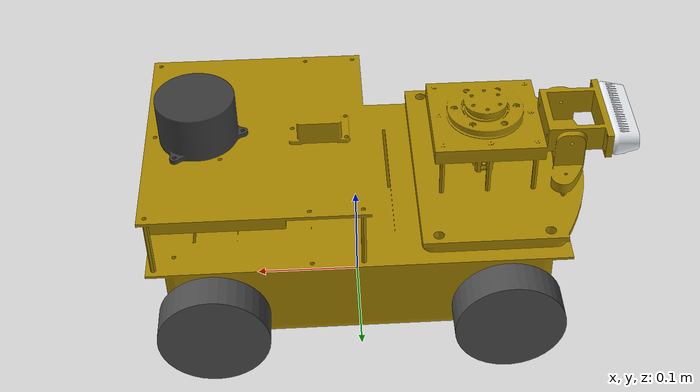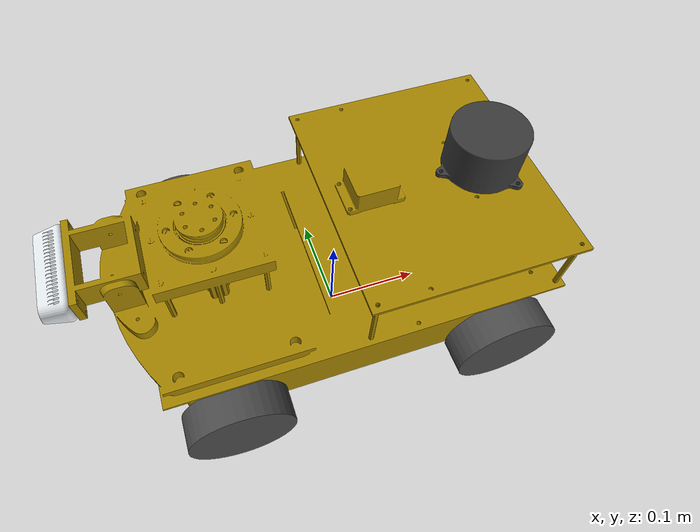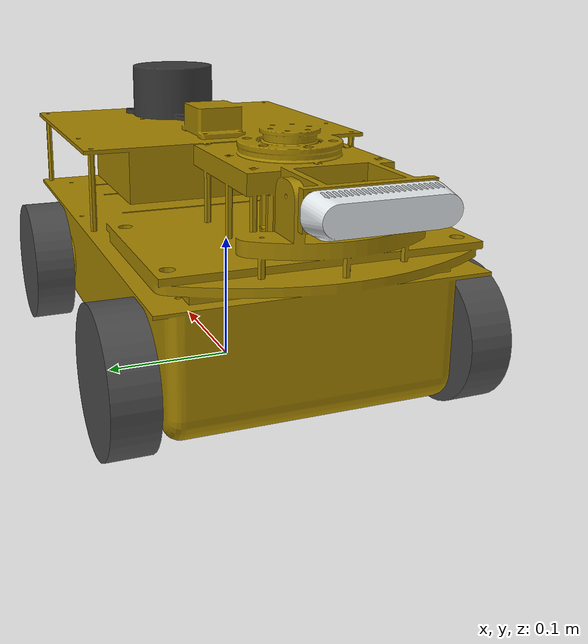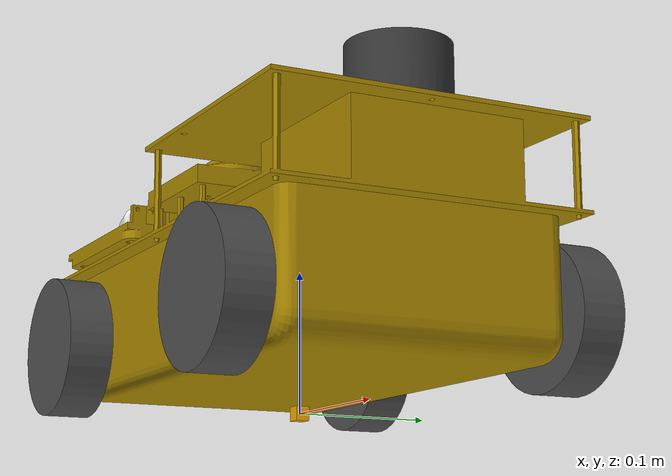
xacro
<!-- 根标签，必须声明 xmlns:xacro -->
<robot name="ttza_descripation" xmlns:xacro="http://www.ros.org/wiki/xacro">
<!--包含机器人的xacro文件-->
	<xacro:include filename="agvcar.urdf" />
<!--运动控制-->
	<xacro:include filename="gazebo/move.xacro" />
<!--雷达配置文件-->
	<xacro:include filename="gazebo/laser.xacro" />
<!--深度相机配置文件-->
	<xacro:include filename="gazebo/kinect.xacro" />
<!--相机配置文件-->
	<xacro:include filename="gazebo/camera.xacro" />
<!-- rqt_plot显示gazebo——pose -->
<gazebo>
    <plugin name="ground_truth_odometry" filename="libgazebo_ros_p3d.so">
      <alwaysOn>true</alwaysOn>
      <updateRate>100.0</updateRate>
      <bodyName>base_link</bodyName>
      <topicName>base_pose_ground_truth</topicName>
      <gaussianNoise>0.01</gaussianNoise>
      <frameName>world</frameName>
      <!-- initialize odometry for fake localization-->
      <xyzOffsets>0 0 0</xyzOffsets>
      <rpyOffsets>0 0 0</rpyOffsets>
    </plugin>
</gazebo>
</robot>

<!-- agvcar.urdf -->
<robot
  name="agvcar">
  <link
    name="front_base">
    <visual>
      <origin
        xyz="0 0 0"
        rpy="0 0 0" />
      <geometry>
        <box size="0.01 0.01 0.01"/>
      </geometry>
    </visual>
  </link>
  <link
    name="base_link">
    <inertial>
      <origin
        xyz="0.0535596635670063 -7.75930973195837E-06 0.0864450067600846"
        rpy="0 0 0" />
      <mass
        value="13.4285294805367" />
      <inertia
        ixx="0.0493474568714098"
        ixy="-6.5377130573348E-11"
        ixz="1.55124810899379E-06"
        iyy="0.0974844673307596"
        iyz="-1.85077943424468E-09"
        izz="0.133169285413625" />
    </inertial>
    <visual>
      <origin
        xyz="0 0 0"
        rpy="0 0 0" />
      <geometry>
        <mesh
          filename="package://agvcar/meshes/base_link.STL" />
      </geometry>
      <material
        name="">
        <color
          rgba="0.647058823529412 0.517647058823529 0 1" />
      </material>
    </visual>
    <collision>
      <origin
        xyz="0 0 0"
        rpy="0 0 0" />
      <geometry>
        <mesh
          filename="package://agvcar/meshes/base_link.STL" />
      </geometry>
    </collision>
  </link>
  <joint
    name="frontbase"
    type="fixed">
    <origin
      xyz="0 0 0.02"
      rpy="0 0 0" />
    <parent
      link="front_base" />
    <child
      link="base_link" />
  </joint>
  <link
    name="zql">
    <inertial>
      <origin
        xyz="0 0.00655993549543088 -2.08166817117217E-17"
        rpy="0 0 0" />
      <mass
        value="0.24686785868356" />
      <inertia
        ixx="0.000186555687353195"
        ixy="5.54971750626698E-19"
        ixz="1.1336124277419E-20"
        iyy="0.000332239900624819"
        iyz="-2.1205858328098E-19"
        izz="0.000186555687353195" />
    </inertial>
    <visual>
      <origin
        xyz="0 0 0"
        rpy="0 0 0" />
      <geometry>
        <mesh
          filename="package://agvcar/meshes/zql.STL" />
      </geometry>
      <material
        name="">
        <color
          rgba="0.298039215686275 0.298039215686275 0.298039215686275 1" />
      </material>
    </visual>
    <collision>
      <origin
        xyz="0 0 0"
        rpy="0 0 0" />
      <geometry>
        <mesh
          filename="package://agvcar/meshes/zql.STL" />
      </geometry>
    </collision>
  </link>
  <joint
    name="zq"
    type="continuous">
    <origin
      xyz="0.134 0.11846 0.0358000000000002"
      rpy="0 0 0" />
    <parent
      link="base_link" />
    <child
      link="zql" />
    <axis
      xyz="0 1 0" />
  </joint>
  <link
    name="yql">
    <inertial>
      <origin
        xyz="1.11022302462516E-16 -0.00655993549543132 0"
        rpy="0 0 0" />
      <mass
        value="0.24686785868356" />
      <inertia
        ixx="0.000186555687353195"
        ixy="5.21507883374648E-19"
        ixz="6.6845016754145E-21"
        iyy="0.000332239900624819"
        iyz="-2.06921789956204E-19"
        izz="0.000186555687353195" />
    </inertial>
    <visual>
      <origin
        xyz="0 0 0"
        rpy="0 0 0" />
      <geometry>
        <mesh
          filename="package://agvcar/meshes/yql.STL" />
      </geometry>
      <material
        name="">
        <color
          rgba="0.298039215686275 0.298039215686275 0.298039215686275 1" />
      </material>
    </visual>
    <collision>
      <origin
        xyz="0 0 0"
        rpy="0 0 0" />
      <geometry>
        <mesh
          filename="package://agvcar/meshes/yql.STL" />
      </geometry>
    </collision>
  </link>
  <joint
    name="yq"
    type="continuous">
    <origin
      xyz="0.133999999999999 -0.11846 0.0358000000000006"
      rpy="0 0 0" />
    <parent
      link="base_link" />
    <child
      link="yql" />
    <axis
      xyz="0 -1 0" />
  </joint>
  <link
    name="zhl">
    <inertial>
      <origin
        xyz="-6.93889390390723E-17 0.00655993549543088 -6.93889390390723E-18"
        rpy="0 0 0" />
      <mass
        value="0.24686785868356" />
      <inertia
        ixx="0.000186555687353195"
        ixy="5.09181411447997E-19"
        ixz="-1.25607927469927E-20"
        iyy="0.000332239900624819"
        iyz="-2.08843859917431E-19"
        izz="0.000186555687353195" />
    </inertial>
    <visual>
      <origin
        xyz="0 0 0"
        rpy="0 0 0" />
      <geometry>
        <mesh
          filename="package://agvcar/meshes/zhl.STL" />
      </geometry>
      <material
        name="">
        <color
          rgba="0.298039215686275 0.298039215686275 0.298039215686275 1" />
      </material>
    </visual>
    <collision>
      <origin
        xyz="0 0 0"
        rpy="0 0 0" />
      <geometry>
        <mesh
          filename="package://agvcar/meshes/zhl.STL" />
      </geometry>
    </collision>
  </link>
  <joint
    name="zh"
    type="continuous">
    <origin
      xyz="-0.134 0.118460000000001 0.0357999999999995"
      rpy="0 0 0" />
    <parent
      link="base_link" />
    <child
      link="zhl" />
    <axis
      xyz="0 1 0" />
  </joint>
  <link
    name="yhl">
    <inertial>
      <origin
        xyz="6.93889390390723E-17 -0.00655993549543088 1.38777878078145E-17"
        rpy="0 0 0" />
      <mass
        value="0.24686785868356" />
      <inertia
        ixx="0.000186555687353195"
        ixy="5.22839018577619E-19"
        ixz="2.81461989764704E-20"
        iyy="0.000332239900624819"
        iyz="-2.0295506492961E-19"
        izz="0.000186555687353195" />
    </inertial>
    <visual>
      <origin
        xyz="0 0 0"
        rpy="0 0 0" />
      <geometry>
        <mesh
          filename="package://agvcar/meshes/yhl.STL" />
      </geometry>
      <material
        name="">
        <color
          rgba="0.298039215686275 0.298039215686275 0.298039215686275 1" />
      </material>
    </visual>
    <collision>
      <origin
        xyz="0 0 0"
        rpy="0 0 0" />
      <geometry>
        <mesh
          filename="package://agvcar/meshes/yhl.STL" />
      </geometry>
    </collision>
  </link>
  <joint
    name="yh"
    type="continuous">
    <origin
      xyz="-0.134000000000001 -0.118459999999999 0.0357999999999998"
      rpy="0 0 0" />
    <parent
      link="base_link" />
    <child
      link="yhl" />
    <axis
      xyz="0 -1 0" />
  </joint>
  <link
    name="ladar">
    <inertial>
      <origin
        xyz="1.00438546368764E-11 -5.09414732619007E-12 0.0222462705397482"
        rpy="0 0 0" />
      <mass
        value="0.180802376452422" />
      <inertia
        ixx="8.86105371612917E-05"
        ixy="1.49899275371219E-14"
        ixz="3.75499657275673E-14"
        iyy="8.86105368846044E-05"
        iyz="-1.35257771200435E-14"
        izz="0.000116614517328158" />
    </inertial>
    <visual>
      <origin
        xyz="0 0 0"
        rpy="0 0 0" />
      <geometry>
        <mesh
          filename="package://agvcar/meshes/ladar.STL" />
      </geometry>
      <material
        name="">
        <color
          rgba="0.223529411764706 0.223529411764706 0.223529411764706 1" />
      </material>
    </visual>
    <collision>
      <origin
        xyz="0 0 0"
        rpy="0 0 0" />
      <geometry>
        <mesh
          filename="package://agvcar/meshes/ladar.STL" />
      </geometry>
    </collision>
  </link>
  <joint
    name="ladar_body"
    type="fixed">
    <origin
      xyz="0.141469568517405 0 0.160500000000001"
      rpy="0 0 0" />
    <parent
      link="base_link" />
    <child
      link="ladar" />
    <axis
      xyz="0 0 0" />
  </joint>
  <link
    name="camera">
    <inertial>
      <origin
        xyz="0.0114440208259819 0.0017049811987826 -0.000136108231652915"
        rpy="0 0 0" />
      <mass
        value="0.107910427285576" />
      <inertia
        ixx="7.12550269124956E-05"
        ixy="-1.78474723509806E-08"
        ixz="-4.9297800794627E-08"
        iyy="7.71002128129154E-06"
        iyz="-2.48245266673343E-10"
        izz="7.02567377723332E-05" />
    </inertial>
    <visual>
      <origin
        xyz="0 0 0"
        rpy="0 0 0" />
      <geometry>
        <mesh
          filename="package://agvcar/meshes/camera.STL" />
      </geometry>
      <material
        name="">
        <color
          rgba="0.898039215686275 0.917647058823529 0.929411764705882 1" />
      </material>
    </visual>
    <collision>
      <origin
        xyz="0 0 0"
        rpy="0 0 0" />
      <geometry>
        <mesh
          filename="package://agvcar/meshes/camera.STL" />
      </geometry>
    </collision>
  </link>
  <joint
    name="camera_body"
    type="fixed">
    <origin
      xyz="-0.25461593319414 -0.00206095974626663 0.162274122782275"
      rpy="0 0 0" />
    <parent
      link="base_link" />
    <child
      link="camera" />
    <axis
      xyz="0 0 0" />
  </joint>
</robot>
